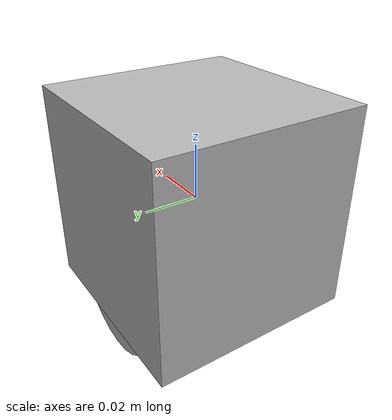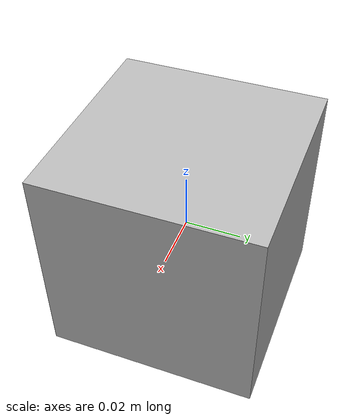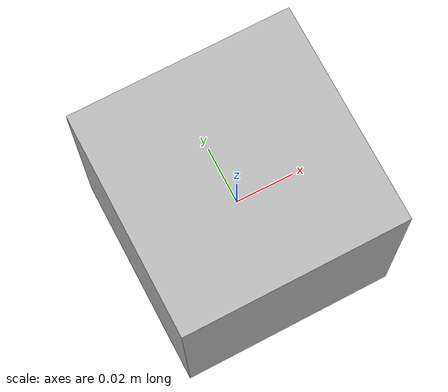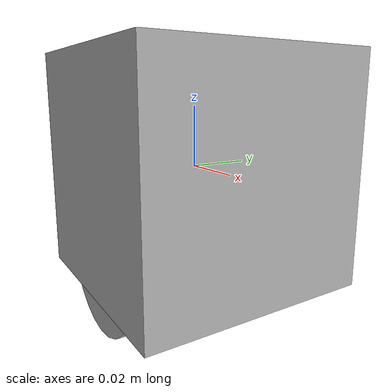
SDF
<?xml version="1.0"?>
<sdf version="1.12">
  <model name="vsss_robot">
    <link name="base">
      <inertial><mass>0.5</mass></inertial>
      <collision name="collision"><geometry><box><size>0.075 0.075 0.075</size></box></geometry></collision>
      <visual name="visual"><geometry><box><size>0.075 0.075 0.075</size></box></geometry></visual>
    </link>
    <link name="left_wheel"><pose relative_to="base">0 0.03 -0.025 1.570796 0 0</pose>
      <collision name="collision"><geometry><cylinder><radius>0.025</radius><length>0.01</length></cylinder></geometry></collision>
      <visual name="visual"><geometry><cylinder><radius>0.025</radius><length>0.01</length></cylinder></geometry></visual>
    </link>
    <link name="right_wheel"><pose relative_to="base">0 -0.03 -0.025 1.570796 0 0</pose>
      <collision name="collision"><geometry><cylinder><radius>0.025</radius><length>0.01</length></cylinder></geometry></collision>
      <visual name="visual"><geometry><cylinder><radius>0.025</radius><length>0.01</length></cylinder></geometry></visual>
    </link>
    <joint name="left_wheel_joint" type="revolute"><parent>base</parent><child>left_wheel</child><axis><xyz>0 1 0</xyz></axis></joint>
    <joint name="right_wheel_joint" type="revolute"><parent>base</parent><child>right_wheel</child><axis><xyz>0 1 0</xyz></axis></joint>
    <plugin filename="gz-sim-diff-drive-system" name="gz::sim::systems::DiffDrive">
      <left_joint>left_wheel_joint</left_joint><right_joint>right_wheel_joint</right_joint>
      <wheel_separation>0.06</wheel_separation><wheel_radius>0.025</wheel_radius>
    </plugin>
  </model>
</sdf>
